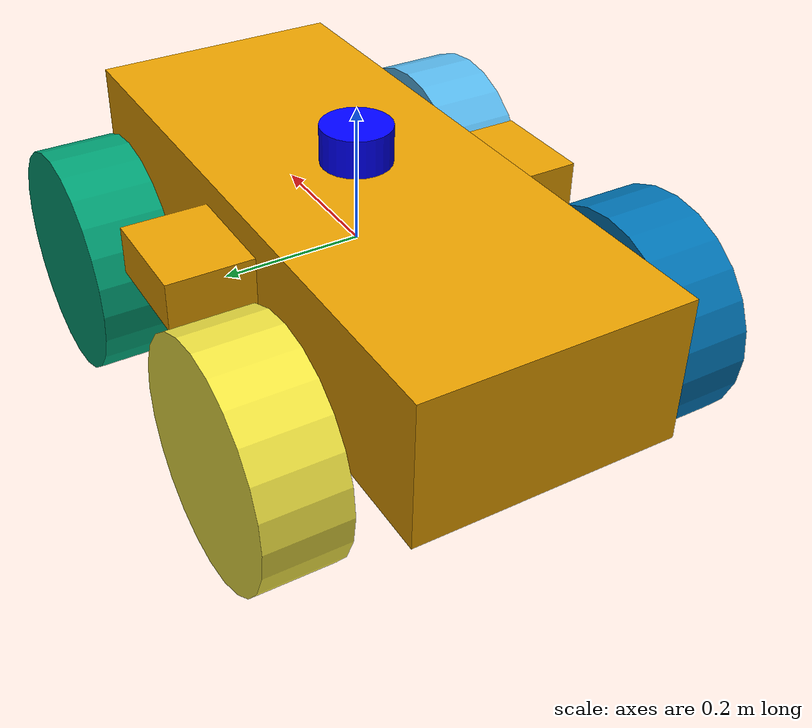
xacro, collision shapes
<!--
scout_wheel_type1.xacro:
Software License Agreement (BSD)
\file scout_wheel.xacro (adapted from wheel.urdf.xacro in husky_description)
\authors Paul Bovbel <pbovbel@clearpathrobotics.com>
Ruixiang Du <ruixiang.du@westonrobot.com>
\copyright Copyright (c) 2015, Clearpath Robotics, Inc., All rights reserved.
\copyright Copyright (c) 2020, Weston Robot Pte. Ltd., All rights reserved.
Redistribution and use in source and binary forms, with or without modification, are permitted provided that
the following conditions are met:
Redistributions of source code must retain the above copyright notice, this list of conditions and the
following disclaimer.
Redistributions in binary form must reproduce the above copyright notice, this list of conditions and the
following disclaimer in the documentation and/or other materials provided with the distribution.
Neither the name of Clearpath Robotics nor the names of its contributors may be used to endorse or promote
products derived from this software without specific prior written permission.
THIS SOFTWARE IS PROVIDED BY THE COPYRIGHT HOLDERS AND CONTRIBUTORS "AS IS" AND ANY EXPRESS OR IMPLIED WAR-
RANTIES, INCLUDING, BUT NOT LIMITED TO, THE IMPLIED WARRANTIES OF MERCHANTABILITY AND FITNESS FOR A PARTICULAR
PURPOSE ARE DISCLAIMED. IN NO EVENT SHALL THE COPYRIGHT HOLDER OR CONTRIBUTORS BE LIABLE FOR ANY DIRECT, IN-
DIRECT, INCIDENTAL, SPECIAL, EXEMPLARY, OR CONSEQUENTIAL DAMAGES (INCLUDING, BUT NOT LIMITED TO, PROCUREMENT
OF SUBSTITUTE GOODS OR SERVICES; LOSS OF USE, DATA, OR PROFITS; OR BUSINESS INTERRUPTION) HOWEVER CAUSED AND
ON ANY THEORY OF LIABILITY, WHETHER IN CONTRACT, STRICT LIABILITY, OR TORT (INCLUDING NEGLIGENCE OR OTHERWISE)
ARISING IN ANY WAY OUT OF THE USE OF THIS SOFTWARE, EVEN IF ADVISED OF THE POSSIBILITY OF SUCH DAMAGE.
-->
<?xml version="1.0"?>
<robot xmlns:xacro="http://wiki.ros.org/xacro" name="ur_softclaw">
    <xacro:include filename="$(find scout_description)/urdf/scout_v2_macro.xacro"/>
    <xacro:include filename="$(find scout_description)/urdf/scout_hw_interface.xacro"/>
    <xacro:include filename="$(find scout_description)/urdf/lidar_sensor.xacro"/>
    <xacro:include filename="$(find scout_description)/urdf/imu_sensor.xacro"/>
    <xacro:arg name="tf_prefix" default=""/>
    <xacro:arg name="simulation" default="true"/>

    <xacro:scout_v2 tf_prefix="$(arg tf_prefix)" simulation="$(arg simulation)"/>
    <xacro:scout_hw_int tf_prefix="$(arg tf_prefix)" simulation="$(arg simulation)"/>
    <xacro:lidar_sensor tf_prefix="$(arg tf_prefix)"/>
    <xacro:imu_sensor tf_prefix="$(arg tf_prefix)"/>
</robot>

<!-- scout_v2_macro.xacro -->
<robot name="scout_v2"
    xmlns:xacro="http://ros.org/wiki/xacro">

     <xacro:macro name="scout_v2" params="
    tf_prefix
    simulation=true
    ">
        <xacro:include filename="$(find scout_description)/urdf/scout_wheel_type1.xacro" />
        <xacro:include filename="$(find scout_description)/urdf/scout_wheel_type2.xacro" />

        <!-- Variables -->
        <xacro:property name="M_PI" value="3.14159"/>

        <!-- Vehicle Geometries -->
        <xacro:property name="base_x_size" value="0.9250000" />
        <xacro:property name="base_y_size" value="0.380000" />
        <xacro:property name="base_z_size" value="0.210000" />

        <xacro:property name="wheelbase" value="0.498" />
        <xacro:property name="track" value="0.58306" />
        <xacro:property name="wheel_vertical_offset" value="-0.0702" />

        <xacro:property name="wheel_length" value="1.1653e-01" />
        <xacro:property name="wheel_radius" value="1.6459e-01" />

        <!-- TF prefix namespace -->
        <xacro:if value="${tf_prefix == ''}">
            <xacro:property name="joint_prefix" value=""/>
        </xacro:if>
        <xacro:unless value="${tf_prefix == ''}">
            <xacro:property name="joint_prefix" value="${tf_prefix}/"/>
        </xacro:unless>
        <!-- Base link -->
        <link name="${joint_prefix}base_link">
            <inertial>
                <mass value="50" />
                <origin xyz="0.0 0.0 0.0" />
                <inertia ixx="2.288641" ixy="0" ixz="0" iyy="5.103976" iyz="0" izz="3.431465" />
            </inertial>
            <visual>
                <origin xyz="0 0 0" rpy="0 0 0" />
                <geometry>
                    <mesh filename="package://scout_description/meshes/base_link.dae" />
                </geometry>
            </visual>
            <collision>
                <origin xyz="0 0 0.008" rpy="0 0 0" />
                <geometry>
                    <box size="${base_x_size} ${base_y_size} ${base_z_size}"/>
                </geometry>
            </collision>
            <collision>
                <origin xyz="0 0 ${base_z_size/6}" rpy="0 0 0" />
                <geometry>
                    <box size="${base_x_size/6} ${base_y_size*1.65} ${base_z_size/3}"/>
                </geometry>
            </collision>
        </link>

        <!-- Scout wheel macros -->
        <!-- wheel labeled from 0 to 3, conter-clockwise, starting from front right wheel -->
        <!-- motor 1 and 2 (left side) are mechanically installed in a reversed direction -->
        <xacro:scout_wheel_type1 namespace="${joint_prefix}" wheel_prefix="front_right">
            <origin xyz="${wheelbase/2} ${-track/2} ${wheel_vertical_offset}" rpy="0 0 0" />
        </xacro:scout_wheel_type1>
        <xacro:scout_wheel_type1 namespace="${joint_prefix}" wheel_prefix="front_left">
            <origin xyz="${wheelbase/2} ${track/2} ${wheel_vertical_offset}" rpy="0 0 0" />
        </xacro:scout_wheel_type1>
        <xacro:scout_wheel_type1 namespace="${joint_prefix}" wheel_prefix="rear_left">
            <origin xyz="${-wheelbase/2} ${track/2} ${wheel_vertical_offset}" rpy="0 0 0" />
        </xacro:scout_wheel_type1>
        <xacro:scout_wheel_type1 namespace="${joint_prefix}" wheel_prefix="rear_right">
            <origin xyz="${-wheelbase/2} ${-track/2} ${wheel_vertical_offset}" rpy="0 0 0" />
        </xacro:scout_wheel_type1>

        <!-- Additional definitions -->

        <!-- Gazebo definitions  -->
    </xacro:macro>
</robot>

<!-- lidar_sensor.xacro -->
<robot xmlns:xacro="http://ros.org/wiki/xacro">

    <xacro:property name="PI" value="3.141592" />

    <xacro:property name="b2l_x" value="0.0" />
    <xacro:property name="b2l_y" value="0.0" />
    <xacro:property name="b2l_z" value="0.15" />
    <xacro:property name="b2l_R" value="0.0" />
    <xacro:property name="b2l_P" value="0.0" />
    <xacro:property name="b2l_Y" value="0.0" />
    <xacro:property name="lidar_mass" value="0.125" />
    <xacro:property name="lidar_len_rad" value="0.0508" />
    <xacro:property name="lidar_len_h" value="0.055" />
    <xacro:include filename="$(find hunter_se_description)/urdf/base_inertia.xacro" />

    <xacro:macro name="lidar_sensor" params="tf_prefix">

        <xacro:if value="${tf_prefix == ''}">
            <xacro:property name="joint_prefix" value=""/>
        </xacro:if>
        <xacro:unless value="${tf_prefix == ''}">
            <xacro:property name="joint_prefix" value="${tf_prefix}/"/>
        </xacro:unless>
        <joint name="base2lidar" type="fixed">
            <parent link="${joint_prefix}base_link"/>
            <child link="${joint_prefix}lidar_link"/>
            <origin xyz="${b2l_x} ${b2l_y} ${b2l_z}" rpy="${b2l_R} ${b2l_P} ${b2l_Y}"/>
        </joint>
        <link name="${joint_prefix}lidar_link">
            <collision>
                <origin xyz="0 0 0" rpy="0 0 0"/>
                <geometry>
                    <cylinder radius="${lidar_len_rad}" length="${lidar_len_h}"/>
                </geometry>
            </collision>

            <visual>
                <origin xyz="0 0 0" rpy="0 0 0"/>
                <geometry>
                    <cylinder radius="${lidar_len_rad}" length="${lidar_len_h}"/>
                </geometry>
                 <material
                    name="">
                    <color
                    rgba="0.0 0.0 1 1" />
                </material>
            </visual>

            <xacro:cylinder_inertia m="${lidar_mass}" r="${lidar_len_rad}" h="${lidar_len_h}" dir="z"/>

        </link>
        <gazebo reference="${joint_prefix}lidar_link">
            <sensor name="RGLsensor" type="custom">
                <plugin filename="RGLServerPluginInstance" name="rgl::RGLServerPluginInstance">
                    <range>
                    <min>0</min>
                    <max>100</max>
                    </range>
                    <update_rate>10</update_rate>
                    <update_on_paused_sim>false</update_on_paused_sim>
                    <topic>${joint_prefix}rgl_lidar</topic>
                    <frame>${joint_prefix}lidar_link</frame>
                    <pattern_preset>Puck</pattern_preset>
                </plugin>
            </sensor>
        </gazebo>

    </xacro:macro>

</robot>

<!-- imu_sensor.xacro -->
<robot xmlns:xacro="http://ros.org/wiki/xacro">

    <xacro:property name="PI" value="3.141592" />
    <xacro:property name="b2i_x" value="0.0" />
    <xacro:property name="b2i_y" value="0.0" />
    <xacro:property name="b2i_z" value="0.0" />
    <xacro:property name="b2i_R" value="0.0" />
    <xacro:property name="b2i_P" value="0.0" />
    <xacro:property name="b2i_Y" value="0.0" />
    <xacro:property name="imu_mass" value="0.01" />
    <xacro:property name="imu_len_x" value="0.01" />
    <xacro:property name="imu_len_y" value="0.01" />
    <xacro:property name="imu_len_z" value="0.01" />

    <xacro:include filename="$(find hunter_se_description)/urdf/base_inertia.xacro" />

    <xacro:macro name="imu_sensor" params="tf_prefix">
         <xacro:if value="${tf_prefix == ''}">
            <xacro:property name="joint_prefix" value=""/>
        </xacro:if>
        <xacro:unless value="${tf_prefix == ''}">
            <xacro:property name="joint_prefix" value="${tf_prefix}/"/>
        </xacro:unless>
        <joint name="base2imu" type="fixed">
            <parent link="${joint_prefix}base_link"/>
            <child link="${joint_prefix}imu_link"/>
            <origin xyz="${b2i_x} ${b2i_y} ${b2i_z}" rpy="${b2i_R} ${b2i_P} ${b2i_Y}"/>
        </joint>
        <link name="${joint_prefix}imu_link">
            <visual>
                <geometry>
                    <box size="${imu_len_x} ${imu_len_y} ${imu_len_z}"/>
                </geometry>

            </visual>

            <collision>
                <geometry>
                    <box size="${imu_len_x} ${imu_len_y} ${imu_len_z}"/>
                </geometry>
            </collision>

            <xacro:box_inertia m="${imu_mass}" w="${imu_len_x}" d="${imu_len_y}" h="${imu_len_z}"/>

        </link>
        <gazebo reference="${joint_prefix}imu_link">
            <sensor name="imu_sensor" type="imu">
                    <ignition_frame_id>${joint_prefix}imu_link</ignition_frame_id>
                    <always_on>1</always_on>
                    <update_rate>500</update_rate>
                    <visualize>true</visualize>
                    <topic>${joint_prefix}imu</topic>
                    <plugin filename="libignition-gazebo-imu-system.so"
                            name="ignition::gazebo::systems::Imu">
                    </plugin>

                    <imu>
                        <angular_velocity>
                            <x>
                                <noise type="gaussian">
                                <mean>0.0</mean>
                                <stddev>2e-4</stddev>
                                <bias_mean>0.0000075</bias_mean>
                                <bias_stddev>0.0000008</bias_stddev>
                                </noise>
                            </x>
                            <y>
                                <noise type="gaussian">
                                <mean>0.0</mean>
                                <stddev>2e-4</stddev>
                                <bias_mean>0.0000075</bias_mean>
                                <bias_stddev>0.0000008</bias_stddev>
                                </noise>
                            </y>
                            <z>
                                <noise type="gaussian">
                                <mean>0.0</mean>
                                <stddev>2e-4</stddev>
                                <bias_mean>0.0000075</bias_mean>
                                <bias_stddev>0.0000008</bias_stddev>
                                </noise>
                            </z>
                        </angular_velocity>
                        <linear_acceleration>
                            <x>
                                <noise type="gaussian">
                                <mean>0.0</mean>
                                <stddev>1.7e-2</stddev>
                                <bias_mean>0.1</bias_mean>
                                <bias_stddev>0.001</bias_stddev>
                                </noise>
                            </x>
                            <y>
                                <noise type="gaussian">
                                <mean>0.0</mean>
                                <stddev>1.7e-2</stddev>
                                <bias_mean>0.1</bias_mean>
                                <bias_stddev>0.001</bias_stddev>
                                </noise>
                            </y>
                            <z>
                                <noise type="gaussian">
                                <mean>0.0</mean>
                                <stddev>1.7e-2</stddev>
                                <bias_mean>0.1</bias_mean>
                                <bias_stddev>0.001</bias_stddev>
                                </noise>
                            </z>
                        </linear_acceleration>
                    </imu>
                </sensor>
        </gazebo>
    </xacro:macro>

</robot>

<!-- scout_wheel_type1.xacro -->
<robot xmlns:xacro="http://ros.org/wiki/xacro" name="scout_wheel">

    <xacro:macro name="scout_wheel_type1" params="namespace wheel_prefix *joint_pose">
        <link name="${namespace}${wheel_prefix}_wheel_link">
            <inertial>
                <mass value="8" />
                <origin xyz="0 0 0" />
                <inertia ixx="0.1171" ixy="0" ixz="0" iyy="0.1361" iyz="0" izz="0.1171" />
            </inertial>
            <visual>
                <origin xyz="0 0 0" rpy="0 0 0" />
                <geometry>
                    <mesh filename="package://scout_description/meshes/wheel_type1.dae" />
                </geometry>
            </visual>
            <collision>
                <origin xyz="0 0 0" rpy="${M_PI/2} 0 0" />
                <geometry>
                    <cylinder length="${wheel_length}" radius="${wheel_radius}" />
                </geometry>
                     <surface>
                        <friction>
                            <ode>
                                <mu>
                                    100.0
                                </mu>
                                <mu2>
                                    0.0
                                </mu2>
                                <slip1>
                                    1.0
                                </slip1>
                                <slip2>
                                    0.0
                                </slip2>

                            </ode>
                        </friction>
                    </surface>
                    <contact>
                        <ode>
                            <kp>10000</kp>
                            <kd>1</kd>
                        </ode>
                    </contact>
            </collision>
        </link>

        <joint name="${namespace}${wheel_prefix}_wheel" type="continuous">
            <parent link="${namespace}base_link"/>
            <child link="${namespace}${wheel_prefix}_wheel_link"/>
            <xacro:insert_block name="joint_pose"/>
            <axis xyz="0 1 0" rpy="0 0 0" />
        </joint>
    </xacro:macro>

</robot>
